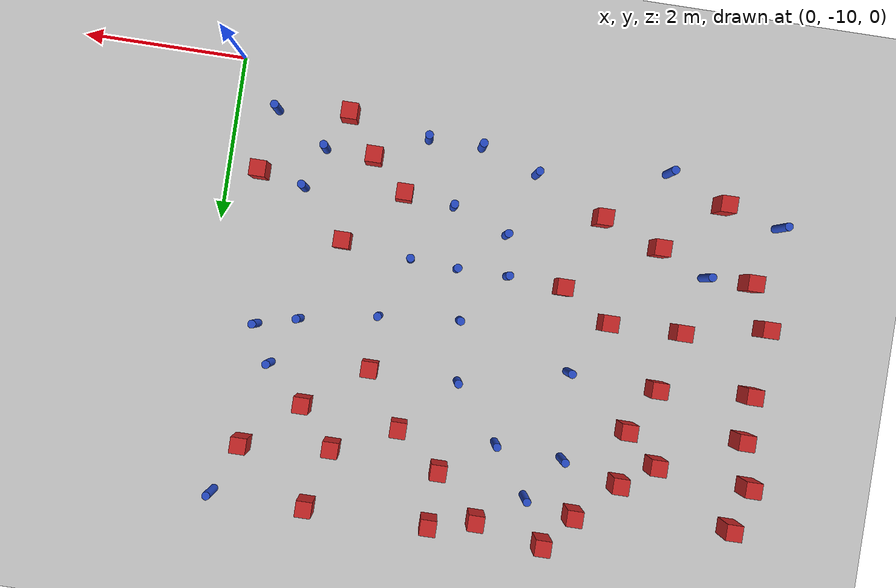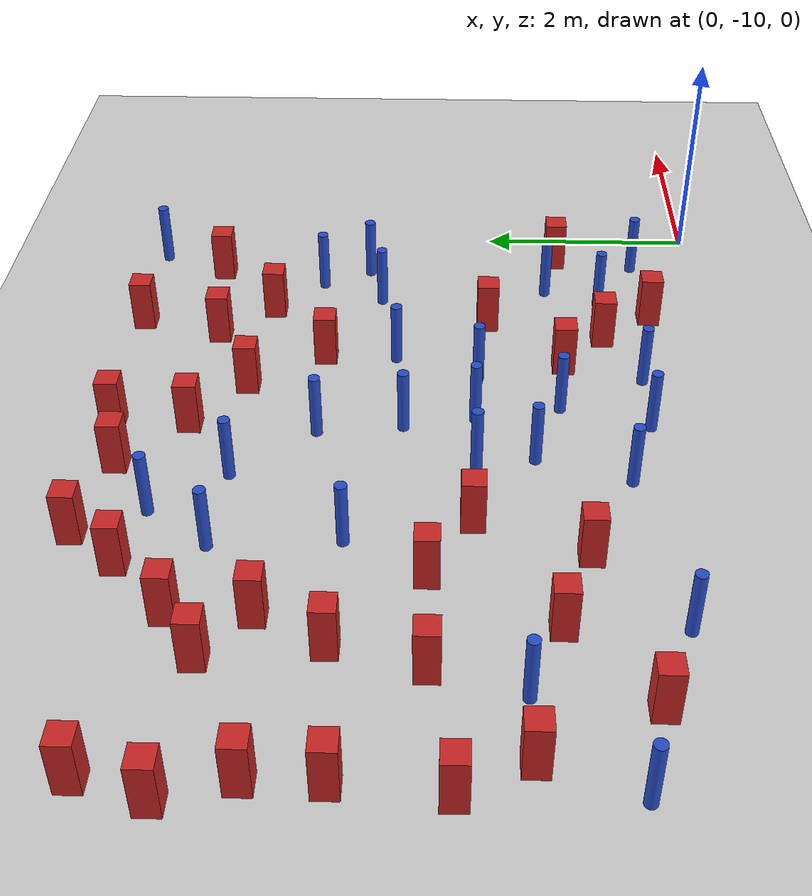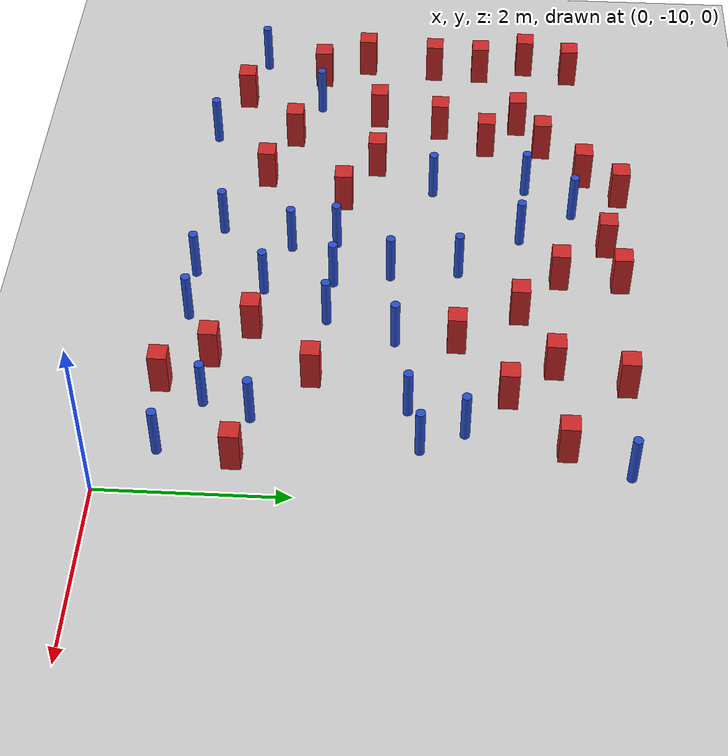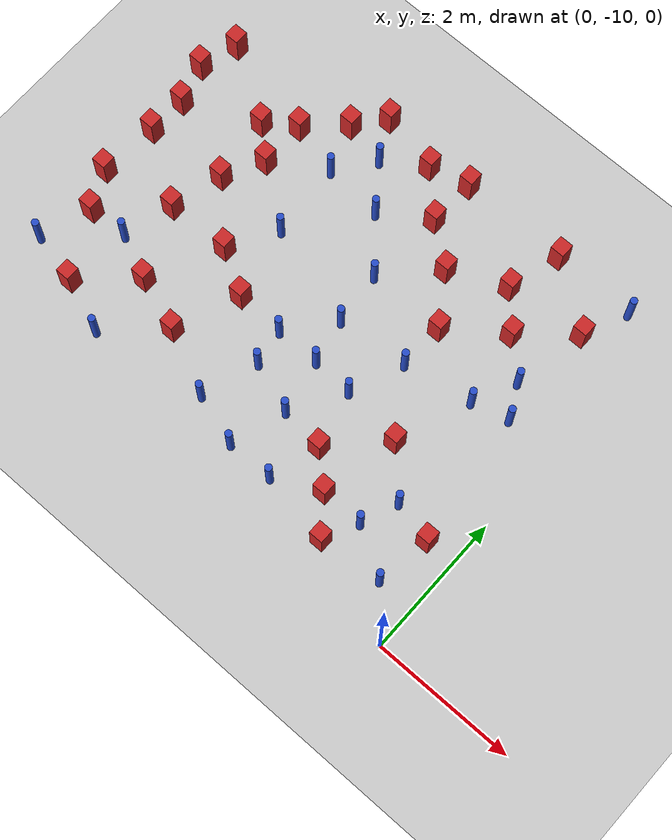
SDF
<sdf version="1.6">
 <world name="default">
  <model name="ground_plane">
   <static>1</static>
   <link name="link">
    <collision name="collision">
     <geometry><plane><normal>0 0 1</normal><size>100 100</size></plane></geometry>
     <surface><friction><ode><mu>100</mu><mu2>50</mu2></ode></friction></surface>
    </collision>
    <visual name="visual">
     <cast_shadows>0</cast_shadows>
     <geometry><plane><normal>0 0 1</normal><size>100 100</size></plane></geometry>
     <material>
      <ambient>1.0 1.0 1.0 1.0</ambient>
      <diffuse>0.8 0.8 0.8 1.0</diffuse>
      <specular>0.01 0.01 0.01 1.000000</specular>
     </material>
    </visual>
   </link>
  </model>
  <model name="square_post_obstacle12">
   <static>true</static>
   <pose>-4.83718442834 -5.03552390437 -6.11067671241e-07 -5.50515727128e-06 -8.79689657224e-07 2.37013304536e-05</pose>
   <link name="link">
    <pose>0 0 0.25 0 -0 0</pose>
    <inertial>
     <mass>100</mass>
     <inertia>
      <ixx>0.166667</ixx>
      <ixy>0</ixy>
      <ixz>0</ixz>
      <iyy>0.166667</iyy>
      <iyz>0</iyz>
      <izz>0.166667</izz>
     </inertia>
    </inertial>
    <collision name="collision"><geometry><box><size>.2 .2 .5</size></box></geometry></collision>
    <visual name="visual">
     <geometry><box><size>.2 .2 .5</size></box></geometry>
     <material>
      <script><name>Gazebo/Red</name><uri>file://media/materials/scripts/gazebo.material</uri></script>
     </material>
    </visual>
   </link>
  </model>
  <model name="square_post_obstacle26">
   <static>true</static>
   <pose>-1.5846080615 -4.65610966505 -6.11067671241e-07 -5.50515727128e-06 -8.79689657224e-07 2.37013304536e-05</pose>
   <link name="link">
    <pose>0 0 0.25 0 -0 0</pose>
    <inertial>
     <mass>100</mass>
     <inertia>
      <ixx>0.166667</ixx>
      <ixy>0</ixy>
      <ixz>0</ixz>
      <iyy>0.166667</iyy>
      <iyz>0</iyz>
      <izz>0.166667</izz>
     </inertia>
    </inertial>
    <collision name="collision"><geometry><box><size>.2 .2 .5</size></box></geometry></collision>
    <visual name="visual">
     <geometry><box><size>.2 .2 .5</size></box></geometry>
     <material>
      <script><name>Gazebo/Red</name><uri>file://media/materials/scripts/gazebo.material</uri></script>
     </material>
    </visual>
   </link>
  </model>
  <model name="pole_obstacle18">
   <static>true</static>
   <pose>-2.40985215184 -9.33603273842 -9.4761961606e-06 5.49618799729e-07 2.36310414e-07 -1.55090534824e-07</pose>
   <link name="link">
    <pose>0 0 0.3 0 -0 0</pose>
    <inertial>
     <mass>1</mass>
     <inertia><ixx>0.145833</ixx><ixy>0</ixy><ixz>0</ixz><iyy>0.145833</iyy><iyz>0</iyz><izz>0.125</izz></inertia>
    </inertial>
    <collision name="collision">
     <geometry><cylinder><radius>0.05</radius><length>.6</length></cylinder></geometry>
    </collision>
    <visual name="visual">
     <geometry><cylinder><radius>0.05</radius><length>.6</length></cylinder></geometry>
     <material>
      <script><name>Gazebo/Blue</name><uri>file://media/materials/scripts/gazebo.material</uri></script>
     </material>
    </visual>
   </link>
  </model>
  <model name="square_post_obstacle30">
   <static>true</static>
   <pose>-4.30563600093 -7.77978778191 -6.11067671241e-07 -5.50515727128e-06 -8.79689657224e-07 2.37013304536e-05</pose>
   <link name="link">
    <pose>0 0 0.25 0 -0 0</pose>
    <inertial>
     <mass>100</mass>
     <inertia>
      <ixx>0.166667</ixx>
      <ixy>0</ixy>
      <ixz>0</ixz>
      <iyy>0.166667</iyy>
      <iyz>0</iyz>
      <izz>0.166667</izz>
     </inertia>
    </inertial>
    <collision name="collision"><geometry><box><size>.2 .2 .5</size></box></geometry></collision>
    <visual name="visual">
     <geometry><box><size>.2 .2 .5</size></box></geometry>
     <material>
      <script><name>Gazebo/Red</name><uri>file://media/materials/scripts/gazebo.material</uri></script>
     </material>
    </visual>
   </link>
  </model>
  <model name="square_post_obstacle35">
   <static>true</static>
   <pose>-2.21484641199 -8.62770187818 -6.11067671241e-07 -5.50515727128e-06 -8.79689657224e-07 2.37013304536e-05</pose>
   <link name="link">
    <pose>0 0 0.25 0 -0 0</pose>
    <inertial>
     <mass>100</mass>
     <inertia>
      <ixx>0.166667</ixx>
      <ixy>0</ixy>
      <ixz>0</ixz>
      <iyy>0.166667</iyy>
      <iyz>0</iyz>
      <izz>0.166667</izz>
     </inertia>
    </inertial>
    <collision name="collision"><geometry><box><size>.2 .2 .5</size></box></geometry></collision>
    <visual name="visual">
     <geometry><box><size>.2 .2 .5</size></box></geometry>
     <material>
      <script><name>Gazebo/Red</name><uri>file://media/materials/scripts/gazebo.material</uri></script>
     </material>
    </visual>
   </link>
  </model>
  <model name="pole_obstacle38">
   <static>true</static>
   <pose>-1.16325461494 -6.91767273952 -9.47619616065e-06 5.49618799737e-07 2.36310414061e-07 -1.550905348e-07</pose>
   <link name="link">
    <pose>0 0 0.3 0 -0 0</pose>
    <inertial>
     <mass>1</mass>
     <inertia><ixx>0.145833</ixx><ixy>0</ixy><ixz>0</ixz><iyy>0.145833</iyy><iyz>0</iyz><izz>0.125</izz></inertia>
    </inertial>
    <collision name="collision">
     <geometry><cylinder><radius>0.05</radius><length>.6</length></cylinder></geometry>
    </collision>
    <visual name="visual">
     <geometry><cylinder><radius>0.05</radius><length>.6</length></cylinder></geometry>
     <material>
      <script><name>Gazebo/Blue</name><uri>file://media/materials/scripts/gazebo.material</uri></script>
     </material>
    </visual>
   </link>
  </model>
  <model name="square_post_obstacle39">
   <static>true</static>
   <pose>-3.10329741094 -4.66121660933 -6.11067671241e-07 -5.50515727128e-06 -8.79689657224e-07 2.37013304536e-05</pose>
   <link name="link">
    <pose>0 0 0.25 0 -0 0</pose>
    <inertial>
     <mass>100</mass>
     <inertia>
      <ixx>0.166667</ixx>
      <ixy>0</ixy>
      <ixz>0</ixz>
      <iyy>0.166667</iyy>
      <iyz>0</iyz>
      <izz>0.166667</izz>
     </inertia>
    </inertial>
    <collision name="collision"><geometry><box><size>.2 .2 .5</size></box></geometry></collision>
    <visual name="visual">
     <geometry><box><size>.2 .2 .5</size></box></geometry>
     <material>
      <script><name>Gazebo/Red</name><uri>file://media/materials/scripts/gazebo.material</uri></script>
     </material>
    </visual>
   </link>
  </model>
  <model name="square_post_obstacle41">
   <static>true</static>
   <pose>-6.75384427077 -6.25018877827 -6.11067671241e-07 -5.50515727128e-06 -8.79689657224e-07 2.37013304536e-05</pose>
   <link name="link">
    <pose>0 0 0.25 0 -0 0</pose>
    <inertial>
     <mass>100</mass>
     <inertia>
      <ixx>0.166667</ixx>
      <ixy>0</ixy>
      <ixz>0</ixz>
      <iyy>0.166667</iyy>
      <iyz>0</iyz>
      <izz>0.166667</izz>
     </inertia>
    </inertial>
    <collision name="collision"><geometry><box><size>.2 .2 .5</size></box></geometry></collision>
    <visual name="visual">
     <geometry><box><size>.2 .2 .5</size></box></geometry>
     <material>
      <script><name>Gazebo/Red</name><uri>file://media/materials/scripts/gazebo.material</uri></script>
     </material>
    </visual>
   </link>
  </model>
  <model name="square_post_obstacle42">
   <static>true</static>
   <pose>-1.36483648472 -5.88899371366 -6.11067671241e-07 -5.50515727128e-06 -8.79689657224e-07 2.37013304536e-05</pose>
   <link name="link">
    <pose>0 0 0.25 0 -0 0</pose>
    <inertial>
     <mass>100</mass>
     <inertia>
      <ixx>0.166667</ixx>
      <ixy>0</ixy>
      <ixz>0</ixz>
      <iyy>0.166667</iyy>
      <iyz>0</iyz>
      <izz>0.166667</izz>
     </inertia>
    </inertial>
    <collision name="collision"><geometry><box><size>.2 .2 .5</size></box></geometry></collision>
    <visual name="visual">
     <geometry><box><size>.2 .2 .5</size></box></geometry>
     <material>
      <script><name>Gazebo/Red</name><uri>file://media/materials/scripts/gazebo.material</uri></script>
     </material>
    </visual>
   </link>
  </model>
  <model name="square_post_obstacle45">
   <static>true</static>
   <pose>-5.81466519297 -7.44528038103 -6.11067671241e-07 -5.50515727128e-06 -8.79689657224e-07 2.37013304536e-05</pose>
   <link name="link">
    <pose>0 0 0.25 0 -0 0</pose>
    <inertial>
     <mass>100</mass>
     <inertia>
      <ixx>0.166667</ixx>
      <ixy>0</ixy>
      <ixz>0</ixz>
      <iyy>0.166667</iyy>
      <iyz>0</iyz>
      <izz>0.166667</izz>
     </inertia>
    </inertial>
    <collision name="collision"><geometry><box><size>.2 .2 .5</size></box></geometry></collision>
    <visual name="visual">
     <geometry><box><size>.2 .2 .5</size></box></geometry>
     <material>
      <script><name>Gazebo/Red</name><uri>file://media/materials/scripts/gazebo.material</uri></script>
     </material>
    </visual>
   </link>
  </model>
  <model name="square_post_obstacle46">
   <static>true</static>
   <pose>-5.39934967736 -8.42780844273 -6.11067671241e-07 -5.50515727128e-06 -8.79689657224e-07 2.37013304536e-05</pose>
   <link name="link">
    <pose>0 0 0.25 0 -0 0</pose>
    <inertial>
     <mass>100</mass>
     <inertia>
      <ixx>0.166667</ixx>
      <ixy>0</ixy>
      <ixz>0</ixz>
      <iyy>0.166667</iyy>
      <iyz>0</iyz>
      <izz>0.166667</izz>
     </inertia>
    </inertial>
    <collision name="collision"><geometry><box><size>.2 .2 .5</size></box></geometry></collision>
    <visual name="visual">
     <geometry><box><size>.2 .2 .5</size></box></geometry>
     <material>
      <script><name>Gazebo/Red</name><uri>file://media/materials/scripts/gazebo.material</uri></script>
     </material>
    </visual>
   </link>
  </model>
  <model name="pole_obstacle50">
   <static>true</static>
   <pose>-2.40730170396 -7.84366065075 -9.47619616065e-06 5.49618799738e-07 2.3631041406e-07 -1.55090534801e-07</pose>
   <link name="link">
    <pose>0 0 0.3 0 -0 0</pose>
    <inertial>
     <mass>1</mass>
     <inertia><ixx>0.145833</ixx><ixy>0</ixy><ixz>0</ixz><iyy>0.145833</iyy><iyz>0</iyz><izz>0.125</izz></inertia>
    </inertial>
    <collision name="collision">
     <geometry><cylinder><radius>0.05</radius><length>.6</length></cylinder></geometry>
    </collision>
    <visual name="visual">
     <geometry><cylinder><radius>0.05</radius><length>.6</length></cylinder></geometry>
     <material>
      <script><name>Gazebo/Blue</name><uri>file://media/materials/scripts/gazebo.material</uri></script>
     </material>
    </visual>
   </link>
  </model>
  <model name="square_post_obstacle49">
   <static>true</static>
   <pose>-6.76174020716 -5.15789990695 -6.11067671241e-07 -5.50515727128e-06 -8.79689657224e-07 2.37013304536e-05</pose>
   <link name="link">
    <pose>0 0 0.25 0 -0 0</pose>
    <inertial>
     <mass>100</mass>
     <inertia>
      <ixx>0.166667</ixx>
      <ixy>0</ixy>
      <ixz>0</ixz>
      <iyy>0.166667</iyy>
      <iyz>0</iyz>
      <izz>0.166667</izz>
     </inertia>
    </inertial>
    <collision name="collision"><geometry><box><size>.2 .2 .5</size></box></geometry></collision>
    <visual name="visual">
     <geometry><box><size>.2 .2 .5</size></box></geometry>
     <material>
      <script><name>Gazebo/Red</name><uri>file://media/materials/scripts/gazebo.material</uri></script>
     </material>
    </visual>
   </link>
  </model>
  <model name="square_post_obstacle57">
   <static>true</static>
   <pose>-2.56894127367 -5.77125538065 -6.11067671241e-07 -5.50515727128e-06 -8.79689657224e-07 2.37013304536e-05</pose>
   <link name="link">
    <pose>0 0 0.25 0 -0 0</pose>
    <inertial>
     <mass>100</mass>
     <inertia>
      <ixx>0.166667</ixx>
      <ixy>0</ixy>
      <ixz>0</ixz>
      <iyy>0.166667</iyy>
      <iyz>0</iyz>
      <izz>0.166667</izz>
     </inertia>
    </inertial>
    <collision name="collision"><geometry><box><size>.2 .2 .5</size></box></geometry></collision>
    <visual name="visual">
     <geometry><box><size>.2 .2 .5</size></box></geometry>
     <material>
      <script><name>Gazebo/Red</name><uri>file://media/materials/scripts/gazebo.material</uri></script>
     </material>
    </visual>
   </link>
  </model>
  <model name="pole_obstacle62">
   <static>true</static>
   <pose>-1.17514716195 -9.03151661753 -9.47619616065e-06 5.49618799737e-07 2.36310414046e-07 -1.55090534809e-07</pose>
   <link name="link">
    <pose>0 0 0.3 0 -0 0</pose>
    <inertial>
     <mass>1</mass>
     <inertia><ixx>0.145833</ixx><ixy>0</ixy><ixz>0</ixz><iyy>0.145833</iyy><iyz>0</iyz><izz>0.125</izz></inertia>
    </inertial>
    <collision name="collision">
     <geometry><cylinder><radius>0.05</radius><length>.6</length></cylinder></geometry>
    </collision>
    <visual name="visual">
     <geometry><cylinder><radius>0.05</radius><length>.6</length></cylinder></geometry>
     <material>
      <script><name>Gazebo/Blue</name><uri>file://media/materials/scripts/gazebo.material</uri></script>
     </material>
    </visual>
   </link>
  </model>
  <model name="square_post_obstacle67">
   <static>true</static>
   <pose>-1.55098153724 -7.94087589289 -6.11067671241e-07 -5.50515727128e-06 -8.79689657224e-07 2.37013304536e-05</pose>
   <link name="link">
    <pose>0 0 0.25 0 -0 0</pose>
    <inertial>
     <mass>100</mass>
     <inertia>
      <ixx>0.166667</ixx>
      <ixy>0</ixy>
      <ixz>0</ixz>
      <iyy>0.166667</iyy>
      <iyz>0</iyz>
      <izz>0.166667</izz>
     </inertia>
    </inertial>
    <collision name="collision"><geometry><box><size>.2 .2 .5</size></box></geometry></collision>
    <visual name="visual">
     <geometry><box><size>.2 .2 .5</size></box></geometry>
     <material>
      <script><name>Gazebo/Red</name><uri>file://media/materials/scripts/gazebo.material</uri></script>
     </material>
    </visual>
   </link>
  </model>
  <model name="pole_obstacle65">
   <static>true</static>
   <pose>-4.22393779312 -5.16657298797 -9.47619616065e-06 5.49618799737e-07 2.36310414037e-07 -1.55090534814e-07</pose>
   <link name="link">
    <pose>0 0 0.3 0 -0 0</pose>
    <inertial>
     <mass>1</mass>
     <inertia><ixx>0.145833</ixx><ixy>0</ixy><ixz>0</ixz><iyy>0.145833</iyy><iyz>0</iyz><izz>0.125</izz></inertia>
    </inertial>
    <collision name="collision">
     <geometry><cylinder><radius>0.05</radius><length>.6</length></cylinder></geometry>
    </collision>
    <visual name="visual">
     <geometry><cylinder><radius>0.05</radius><length>.6</length></cylinder></geometry>
     <material>
      <script><name>Gazebo/Blue</name><uri>file://media/materials/scripts/gazebo.material</uri></script>
     </material>
    </visual>
   </link>
  </model>
  <model name="square_post_obstacle68">
   <static>true</static>
   <pose>-4.6569359601 -8.69216541888 -6.11067671241e-07 -5.50515727128e-06 -8.79689657224e-07 2.37013304536e-05</pose>
   <link name="link">
    <pose>0 0 0.25 0 -0 0</pose>
    <inertial>
     <mass>100</mass>
     <inertia>
      <ixx>0.166667</ixx>
      <ixy>0</ixy>
      <ixz>0</ixz>
      <iyy>0.166667</iyy>
      <iyz>0</iyz>
      <izz>0.166667</izz>
     </inertia>
    </inertial>
    <collision name="collision"><geometry><box><size>.2 .2 .5</size></box></geometry></collision>
    <visual name="visual">
     <geometry><box><size>.2 .2 .5</size></box></geometry>
     <material>
      <script><name>Gazebo/Red</name><uri>file://media/materials/scripts/gazebo.material</uri></script>
     </material>
    </visual>
   </link>
  </model>
  <model name="pole_obstacle68">
   <static>true</static>
   <pose>-3.78103634421 -9.10641417287 -9.47619616065e-06 5.49618799738e-07 2.36310414059e-07 -1.55090534802e-07</pose>
   <link name="link">
    <pose>0 0 0.3 0 -0 0</pose>
    <inertial>
     <mass>1</mass>
     <inertia><ixx>0.145833</ixx><ixy>0</ixy><ixz>0</ixz><iyy>0.145833</iyy><iyz>0</iyz><izz>0.125</izz></inertia>
    </inertial>
    <collision name="collision">
     <geometry><cylinder><radius>0.05</radius><length>.6</length></cylinder></geometry>
    </collision>
    <visual name="visual">
     <geometry><cylinder><radius>0.05</radius><length>.6</length></cylinder></geometry>
     <material>
      <script><name>Gazebo/Blue</name><uri>file://media/materials/scripts/gazebo.material</uri></script>
     </material>
    </visual>
   </link>
  </model>
  <model name="pole_obstacle71">
   <static>true</static>
   <pose>-3.115735888 -7.18829062991 -9.47619616065e-06 5.49618799738e-07 2.3631041406e-07 -1.55090534801e-07</pose>
   <link name="link">
    <pose>0 0 0.3 0 -0 0</pose>
    <inertial>
     <mass>1</mass>
     <inertia><ixx>0.145833</ixx><ixy>0</ixy><ixz>0</ixz><iyy>0.145833</iyy><iyz>0</iyz><izz>0.125</izz></inertia>
    </inertial>
    <collision name="collision">
     <geometry><cylinder><radius>0.05</radius><length>.6</length></cylinder></geometry>
    </collision>
    <visual name="visual">
     <geometry><cylinder><radius>0.05</radius><length>.6</length></cylinder></geometry>
     <material>
      <script><name>Gazebo/Blue</name><uri>file://media/materials/scripts/gazebo.material</uri></script>
     </material>
    </visual>
   </link>
  </model>
  <model name="pole_obstacle72">
   <static>true</static>
   <pose>-0.983941497895 -8.52154136609 -9.47619616065e-06 5.49618799737e-07 2.36310414038e-07 -1.55090534814e-07</pose>
   <link name="link">
    <pose>0 0 0.3 0 -0 0</pose>
    <inertial>
     <mass>1</mass>
     <inertia><ixx>0.145833</ixx><ixy>0</ixy><ixz>0</ixz><iyy>0.145833</iyy><iyz>0</iyz><izz>0.125</izz></inertia>
    </inertial>
    <collision name="collision">
     <geometry><cylinder><radius>0.05</radius><length>.6</length></cylinder></geometry>
    </collision>
    <visual name="visual">
     <geometry><cylinder><radius>0.05</radius><length>.6</length></cylinder></geometry>
     <material>
      <script><name>Gazebo/Blue</name><uri>file://media/materials/scripts/gazebo.material</uri></script>
     </material>
    </visual>
   </link>
  </model>
  <model name="pole_obstacle76">
   <static>true</static>
   <pose>-4.60678717807 -5.69894067374 -9.47619616065e-06 5.49618799737e-07 2.36310414037e-07 -1.55090534814e-07</pose>
   <link name="link">
    <pose>0 0 0.3 0 -0 0</pose>
    <inertial>
     <mass>1</mass>
     <inertia><ixx>0.145833</ixx><ixy>0</ixy><ixz>0</ixz><iyy>0.145833</iyy><iyz>0</iyz><izz>0.125</izz></inertia>
    </inertial>
    <collision name="collision">
     <geometry><cylinder><radius>0.05</radius><length>.6</length></cylinder></geometry>
    </collision>
    <visual name="visual">
     <geometry><cylinder><radius>0.05</radius><length>.6</length></cylinder></geometry>
     <material>
      <script><name>Gazebo/Blue</name><uri>file://media/materials/scripts/gazebo.material</uri></script>
     </material>
    </visual>
   </link>
  </model>
  <model name="pole_obstacle77">
   <static>true</static>
   <pose>-3.5255386827 -8.31318433163 -9.4761961606e-06 5.49618799729e-07 2.36310414e-07 -1.55090534824e-07</pose>
   <link name="link">
    <pose>0 0 0.3 0 -0 0</pose>
    <inertial>
     <mass>1</mass>
     <inertia><ixx>0.145833</ixx><ixy>0</ixy><ixz>0</ixz><iyy>0.145833</iyy><iyz>0</iyz><izz>0.125</izz></inertia>
    </inertial>
    <collision name="collision">
     <geometry><cylinder><radius>0.05</radius><length>.6</length></cylinder></geometry>
    </collision>
    <visual name="visual">
     <geometry><cylinder><radius>0.05</radius><length>.6</length></cylinder></geometry>
     <material>
      <script><name>Gazebo/Blue</name><uri>file://media/materials/scripts/gazebo.material</uri></script>
     </material>
    </visual>
   </link>
  </model>
  <model name="square_post_obstacle77">
   <static>true</static>
   <pose>-3.12828887506 -5.33292674499 -6.11067671241e-07 -5.50515727128e-06 -8.79689657224e-07 2.37013304536e-05</pose>
   <link name="link">
    <pose>0 0 0.25 0 -0 0</pose>
    <inertial>
     <mass>100</mass>
     <inertia>
      <ixx>0.166667</ixx>
      <ixy>0</ixy>
      <ixz>0</ixz>
      <iyy>0.166667</iyy>
      <iyz>0</iyz>
      <izz>0.166667</izz>
     </inertia>
    </inertial>
    <collision name="collision"><geometry><box><size>.2 .2 .5</size></box></geometry></collision>
    <visual name="visual">
     <geometry><box><size>.2 .2 .5</size></box></geometry>
     <material>
      <script><name>Gazebo/Red</name><uri>file://media/materials/scripts/gazebo.material</uri></script>
     </material>
    </visual>
   </link>
  </model>
  <model name="pole_obstacle81">
   <static>true</static>
   <pose>-5.38350220126 -9.36172045176 -9.47619616065e-06 5.49618799737e-07 2.36310414065e-07 -1.55090534796e-07</pose>
   <link name="link">
    <pose>0 0 0.3 0 -0 0</pose>
    <inertial>
     <mass>1</mass>
     <inertia><ixx>0.145833</ixx><ixy>0</ixy><ixz>0</ixz><iyy>0.145833</iyy><iyz>0</iyz><izz>0.125</izz></inertia>
    </inertial>
    <collision name="collision">
     <geometry><cylinder><radius>0.05</radius><length>.6</length></cylinder></geometry>
    </collision>
    <visual name="visual">
     <geometry><cylinder><radius>0.05</radius><length>.6</length></cylinder></geometry>
     <material>
      <script><name>Gazebo/Blue</name><uri>file://media/materials/scripts/gazebo.material</uri></script>
     </material>
    </visual>
   </link>
  </model>
  <model name="square_post_obstacle87">
   <static>true</static>
   <pose>-5.33389345543 -6.16191208388 -6.11067671241e-07 -5.50515727128e-06 -8.79689657224e-07 2.37013304536e-05</pose>
   <link name="link">
    <pose>0 0 0.25 0 -0 0</pose>
    <inertial>
     <mass>100</mass>
     <inertia>
      <ixx>0.166667</ixx>
      <ixy>0</ixy>
      <ixz>0</ixz>
      <iyy>0.166667</iyy>
      <iyz>0</iyz>
      <izz>0.166667</izz>
     </inertia>
    </inertial>
    <collision name="collision"><geometry><box><size>.2 .2 .5</size></box></geometry></collision>
    <visual name="visual">
     <geometry><box><size>.2 .2 .5</size></box></geometry>
     <material>
      <script><name>Gazebo/Red</name><uri>file://media/materials/scripts/gazebo.material</uri></script>
     </material>
    </visual>
   </link>
  </model>
  <model name="pole_obstacle97">
   <static>true</static>
   <pose>-2.12272352979 -7.09306886857 -9.47619616065e-06 5.49618799738e-07 2.3631041406e-07 -1.55090534801e-07</pose>
   <link name="link">
    <pose>0 0 0.3 0 -0 0</pose>
    <inertial>
     <mass>1</mass>
     <inertia><ixx>0.145833</ixx><ixy>0</ixy><ixz>0</ixz><iyy>0.145833</iyy><iyz>0</iyz><izz>0.125</izz></inertia>
    </inertial>
    <collision name="collision">
     <geometry><cylinder><radius>0.05</radius><length>.6</length></cylinder></geometry>
    </collision>
    <visual name="visual">
     <geometry><cylinder><radius>0.05</radius><length>.6</length></cylinder></geometry>
     <material>
      <script><name>Gazebo/Blue</name><uri>file://media/materials/scripts/gazebo.material</uri></script>
     </material>
    </visual>
   </link>
  </model>
  <model name="pole_obstacle105">
   <static>true</static>
   <pose>-3.07050059901 -9.33777043437 -9.4761961606e-06 5.49618799729e-07 2.36310414e-07 -1.55090534824e-07</pose>
   <link name="link">
    <pose>0 0 0.3 0 -0 0</pose>
    <inertial>
     <mass>1</mass>
     <inertia><ixx>0.145833</ixx><ixy>0</ixy><ixz>0</ixz><iyy>0.145833</iyy><iyz>0</iyz><izz>0.125</izz></inertia>
    </inertial>
    <collision name="collision">
     <geometry><cylinder><radius>0.05</radius><length>.6</length></cylinder></geometry>
    </collision>
    <visual name="visual">
     <geometry><cylinder><radius>0.05</radius><length>.6</length></cylinder></geometry>
     <material>
      <script><name>Gazebo/Blue</name><uri>file://media/materials/scripts/gazebo.material</uri></script>
     </material>
    </visual>
   </link>
  </model>
  <model name="square_post_obstacle94">
   <static>true</static>
   <pose>-5.33003239853 -5.50318650776 -6.11067671241e-07 -5.50515727128e-06 -8.79689657224e-07 2.37013304536e-05</pose>
   <link name="link">
    <pose>0 0 0.25 0 -0 0</pose>
    <inertial>
     <mass>100</mass>
     <inertia>
      <ixx>0.166667</ixx>
      <ixy>0</ixy>
      <ixz>0</ixz>
      <iyy>0.166667</iyy>
      <iyz>0</iyz>
      <izz>0.166667</izz>
     </inertia>
    </inertial>
    <collision name="collision"><geometry><box><size>.2 .2 .5</size></box></geometry></collision>
    <visual name="visual">
     <geometry><box><size>.2 .2 .5</size></box></geometry>
     <material>
      <script><name>Gazebo/Red</name><uri>file://media/materials/scripts/gazebo.material</uri></script>
     </material>
    </visual>
   </link>
  </model>
  <model name="square_post_obstacle101">
   <static>true</static>
   <pose>-5.62275897522 -6.71462622603 -6.11067671241e-07 -5.50515727128e-06 -8.79689657224e-07 2.37013304536e-05</pose>
   <link name="link">
    <pose>0 0 0.25 0 -0 0</pose>
    <inertial>
     <mass>100</mass>
     <inertia>
      <ixx>0.166667</ixx>
      <ixy>0</ixy>
      <ixz>0</ixz>
      <iyy>0.166667</iyy>
      <iyz>0</iyz>
      <izz>0.166667</izz>
     </inertia>
    </inertial>
    <collision name="collision"><geometry><box><size>.2 .2 .5</size></box></geometry></collision>
    <visual name="visual">
     <geometry><box><size>.2 .2 .5</size></box></geometry>
     <material>
      <script><name>Gazebo/Red</name><uri>file://media/materials/scripts/gazebo.material</uri></script>
     </material>
    </visual>
   </link>
  </model>
  <model name="pole_obstacle119">
   <static>true</static>
   <pose>-0.417210719167 -4.66447657872 -9.47619616065e-06 5.49618799737e-07 2.36310414065e-07 -1.55090534796e-07</pose>
   <link name="link">
    <pose>0 0 0.3 0 -0 0</pose>
    <inertial>
     <mass>1</mass>
     <inertia><ixx>0.145833</ixx><ixy>0</ixy><ixz>0</ixz><iyy>0.145833</iyy><iyz>0</iyz><izz>0.125</izz></inertia>
    </inertial>
    <collision name="collision">
     <geometry><cylinder><radius>0.05</radius><length>.6</length></cylinder></geometry>
    </collision>
    <visual name="visual">
     <geometry><cylinder><radius>0.05</radius><length>.6</length></cylinder></geometry>
     <material>
      <script><name>Gazebo/Blue</name><uri>file://media/materials/scripts/gazebo.material</uri></script>
     </material>
    </visual>
   </link>
  </model>
  <model name="pole_obstacle126">
   <static>true</static>
   <pose>-0.521110383519 -9.41913757347 -9.47619616065e-06 5.49618799737e-07 2.36310414028e-07 -1.55090534819e-07</pose>
   <link name="link">
    <pose>0 0 0.3 0 -0 0</pose>
    <inertial>
     <mass>1</mass>
     <inertia><ixx>0.145833</ixx><ixy>0</ixy><ixz>0</ixz><iyy>0.145833</iyy><iyz>0</iyz><izz>0.125</izz></inertia>
    </inertial>
    <collision name="collision">
     <geometry><cylinder><radius>0.05</radius><length>.6</length></cylinder></geometry>
    </collision>
    <visual name="visual">
     <geometry><cylinder><radius>0.05</radius><length>.6</length></cylinder></geometry>
     <material>
      <script><name>Gazebo/Blue</name><uri>file://media/materials/scripts/gazebo.material</uri></script>
     </material>
    </visual>
   </link>
  </model>
  <model name="pole_obstacle129">
   <static>true</static>
   <pose>-3.20199169894 -6.44157220688 -9.47619616065e-06 5.49618799738e-07 2.3631041406e-07 -1.55090534801e-07</pose>
   <link name="link">
    <pose>0 0 0.3 0 -0 0</pose>
    <inertial>
     <mass>1</mass>
     <inertia><ixx>0.145833</ixx><ixy>0</ixy><ixz>0</ixz><iyy>0.145833</iyy><iyz>0</iyz><izz>0.125</izz></inertia>
    </inertial>
    <collision name="collision">
     <geometry><cylinder><radius>0.05</radius><length>.6</length></cylinder></geometry>
    </collision>
    <visual name="visual">
     <geometry><cylinder><radius>0.05</radius><length>.6</length></cylinder></geometry>
     <material>
      <script><name>Gazebo/Blue</name><uri>file://media/materials/scripts/gazebo.material</uri></script>
     </material>
    </visual>
   </link>
  </model>
  <model name="pole_obstacle130">
   <static>true</static>
   <pose>-4.52960066977 -6.7620172495 -9.47619616065e-06 5.49618799737e-07 2.36310414037e-07 -1.55090534814e-07</pose>
   <link name="link">
    <pose>0 0 0.3 0 -0 0</pose>
    <inertial>
     <mass>1</mass>
     <inertia><ixx>0.145833</ixx><ixy>0</ixy><ixz>0</ixz><iyy>0.145833</iyy><iyz>0</iyz><izz>0.125</izz></inertia>
    </inertial>
    <collision name="collision">
     <geometry><cylinder><radius>0.05</radius><length>.6</length></cylinder></geometry>
    </collision>
    <visual name="visual">
     <geometry><cylinder><radius>0.05</radius><length>.6</length></cylinder></geometry>
     <material>
      <script><name>Gazebo/Blue</name><uri>file://media/materials/scripts/gazebo.material</uri></script>
     </material>
    </visual>
   </link>
  </model>
  <model name="pole_obstacle137">
   <static>true</static>
   <pose>-6.01286912979 -8.15784162708 -9.47619616065e-06 5.49618799737e-07 2.36310414065e-07 -1.55090534796e-07</pose>
   <link name="link">
    <pose>0 0 0.3 0 -0 0</pose>
    <inertial>
     <mass>1</mass>
     <inertia><ixx>0.145833</ixx><ixy>0</ixy><ixz>0</ixz><iyy>0.145833</iyy><iyz>0</iyz><izz>0.125</izz></inertia>
    </inertial>
    <collision name="collision">
     <geometry><cylinder><radius>0.05</radius><length>.6</length></cylinder></geometry>
    </collision>
    <visual name="visual">
     <geometry><cylinder><radius>0.05</radius><length>.6</length></cylinder></geometry>
     <material>
      <script><name>Gazebo/Blue</name><uri>file://media/materials/scripts/gazebo.material</uri></script>
     </material>
    </visual>
   </link>
  </model>
  <model name="pole_obstacle138">
   <static>true</static>
   <pose>-6.82486469417 -8.89566421901 -9.47619616065e-06 5.49618799737e-07 2.36310414065e-07 -1.55090534796e-07</pose>
   <link name="link">
    <pose>0 0 0.3 0 -0 0</pose>
    <inertial>
     <mass>1</mass>
     <inertia><ixx>0.145833</ixx><ixy>0</ixy><ixz>0</ixz><iyy>0.145833</iyy><iyz>0</iyz><izz>0.125</izz></inertia>
    </inertial>
    <collision name="collision">
     <geometry><cylinder><radius>0.05</radius><length>.6</length></cylinder></geometry>
    </collision>
    <visual name="visual">
     <geometry><cylinder><radius>0.05</radius><length>.6</length></cylinder></geometry>
     <material>
      <script><name>Gazebo/Blue</name><uri>file://media/materials/scripts/gazebo.material</uri></script>
     </material>
    </visual>
   </link>
  </model>
  <model name="square_post_obstacle136">
   <static>true</static>
   <pose>-4.9115086818 -7.42745471552 -6.11067671241e-07 -5.50515727128e-06 -8.79689657224e-07 2.37013304536e-05</pose>
   <link name="link">
    <pose>0 0 0.25 0 -0 0</pose>
    <inertial>
     <mass>100</mass>
     <inertia>
      <ixx>0.166667</ixx>
      <ixy>0</ixy>
      <ixz>0</ixz>
      <iyy>0.166667</iyy>
      <iyz>0</iyz>
      <izz>0.166667</izz>
     </inertia>
    </inertial>
    <collision name="collision"><geometry><box><size>.2 .2 .5</size></box></geometry></collision>
    <visual name="visual">
     <geometry><box><size>.2 .2 .5</size></box></geometry>
     <material>
      <script><name>Gazebo/Red</name><uri>file://media/materials/scripts/gazebo.material</uri></script>
     </material>
    </visual>
   </link>
  </model>
  <model name="square_post_obstacle139">
   <static>true</static>
   <pose>-6.83646586827 -7.63972051054 -6.11067671241e-07 -5.50515727128e-06 -8.79689657224e-07 2.37013304536e-05</pose>
   <link name="link">
    <pose>0 0 0.25 0 -0 0</pose>
    <inertial>
     <mass>100</mass>
     <inertia>
      <ixx>0.166667</ixx>
      <ixy>0</ixy>
      <ixz>0</ixz>
      <iyy>0.166667</iyy>
      <iyz>0</iyz>
      <izz>0.166667</izz>
     </inertia>
    </inertial>
    <collision name="collision"><geometry><box><size>.2 .2 .5</size></box></geometry></collision>
    <visual name="visual">
     <geometry><box><size>.2 .2 .5</size></box></geometry>
     <material>
      <script><name>Gazebo/Red</name><uri>file://media/materials/scripts/gazebo.material</uri></script>
     </material>
    </visual>
   </link>
  </model>
  <model name="square_post_obstacle141">
   <static>true</static>
   <pose>-6.57248889949 -8.17117825278 -6.11067671241e-07 -5.50515727128e-06 -8.79689657224e-07 2.37013304536e-05</pose>
   <link name="link">
    <pose>0 0 0.25 0 -0 0</pose>
    <inertial>
     <mass>100</mass>
     <inertia>
      <ixx>0.166667</ixx>
      <ixy>0</ixy>
      <ixz>0</ixz>
      <iyy>0.166667</iyy>
      <iyz>0</iyz>
      <izz>0.166667</izz>
     </inertia>
    </inertial>
    <collision name="collision"><geometry><box><size>.2 .2 .5</size></box></geometry></collision>
    <visual name="visual">
     <geometry><box><size>.2 .2 .5</size></box></geometry>
     <material>
      <script><name>Gazebo/Red</name><uri>file://media/materials/scripts/gazebo.material</uri></script>
     </material>
    </visual>
   </link>
  </model>
  <model name="pole_obstacle152">
   <static>true</static>
   <pose>-0.650590705445 -6.77768869467 -9.47619616065e-06 5.49618799737e-07 2.36310414065e-07 -1.55090534796e-07</pose>
   <link name="link">
    <pose>0 0 0.3 0 -0 0</pose>
    <inertial>
     <mass>1</mass>
     <inertia><ixx>0.145833</ixx><ixy>0</ixy><ixz>0</ixz><iyy>0.145833</iyy><iyz>0</iyz><izz>0.125</izz></inertia>
    </inertial>
    <collision name="collision">
     <geometry><cylinder><radius>0.05</radius><length>.6</length></cylinder></geometry>
    </collision>
    <visual name="visual">
     <geometry><cylinder><radius>0.05</radius><length>.6</length></cylinder></geometry>
     <material>
      <script><name>Gazebo/Blue</name><uri>file://media/materials/scripts/gazebo.material</uri></script>
     </material>
    </visual>
   </link>
  </model>
  <model name="square_post_obstacle142">
   <static>true</static>
   <pose>-2.1130431555 -6.43939039516 -6.11067671241e-07 -5.50515727128e-06 -8.79689657224e-07 2.37013304536e-05</pose>
   <link name="link">
    <pose>0 0 0.25 0 -0 0</pose>
    <inertial>
     <mass>100</mass>
     <inertia>
      <ixx>0.166667</ixx>
      <ixy>0</ixy>
      <ixz>0</ixz>
      <iyy>0.166667</iyy>
      <iyz>0</iyz>
      <izz>0.166667</izz>
     </inertia>
    </inertial>
    <collision name="collision"><geometry><box><size>.2 .2 .5</size></box></geometry></collision>
    <visual name="visual">
     <geometry><box><size>.2 .2 .5</size></box></geometry>
     <material>
      <script><name>Gazebo/Red</name><uri>file://media/materials/scripts/gazebo.material</uri></script>
     </material>
    </visual>
   </link>
  </model>
  <model name="square_post_obstacle146">
   <static>true</static>
   <pose>-6.10695518062 -9.06757628955 -6.11067671241e-07 -5.50515727128e-06 -8.79689657224e-07 2.37013304536e-05</pose>
   <link name="link">
    <pose>0 0 0.25 0 -0 0</pose>
    <inertial>
     <mass>100</mass>
     <inertia>
      <ixx>0.166667</ixx>
      <ixy>0</ixy>
      <ixz>0</ixz>
      <iyy>0.166667</iyy>
      <iyz>0</iyz>
      <izz>0.166667</izz>
     </inertia>
    </inertial>
    <collision name="collision"><geometry><box><size>.2 .2 .5</size></box></geometry></collision>
    <visual name="visual">
     <geometry><box><size>.2 .2 .5</size></box></geometry>
     <material>
      <script><name>Gazebo/Red</name><uri>file://media/materials/scripts/gazebo.material</uri></script>
     </material>
    </visual>
   </link>
  </model>
  <model name="pole_obstacle158">
   <static>true</static>
   <pose>-2.833620576 -8.5626191134 -9.4761961606e-06 5.49618799729e-07 2.36310414e-07 -1.55090534824e-07</pose>
   <link name="link">
    <pose>0 0 0.3 0 -0 0</pose>
    <inertial>
     <mass>1</mass>
     <inertia><ixx>0.145833</ixx><ixy>0</ixy><ixz>0</ixz><iyy>0.145833</iyy><iyz>0</iyz><izz>0.125</izz></inertia>
    </inertial>
    <collision name="collision">
     <geometry><cylinder><radius>0.05</radius><length>.6</length></cylinder></geometry>
    </collision>
    <visual name="visual">
     <geometry><cylinder><radius>0.05</radius><length>.6</length></cylinder></geometry>
     <material>
      <script><name>Gazebo/Blue</name><uri>file://media/materials/scripts/gazebo.material</uri></script>
     </material>
    </visual>
   </link>
  </model>
  <model name="square_post_obstacle157">
   <static>true</static>
   <pose>-0.689765589237 -5.29750381736 -6.11067671241e-07 -5.50515727128e-06 -8.79689657224e-07 2.37013304536e-05</pose>
   <link name="link">
    <pose>0 0 0.25 0 -0 0</pose>
    <inertial>
     <mass>100</mass>
     <inertia>
      <ixx>0.166667</ixx>
      <ixy>0</ixy>
      <ixz>0</ixz>
      <iyy>0.166667</iyy>
      <iyz>0</iyz>
      <izz>0.166667</izz>
     </inertia>
    </inertial>
    <collision name="collision"><geometry><box><size>.2 .2 .5</size></box></geometry></collision>
    <visual name="visual">
     <geometry><box><size>.2 .2 .5</size></box></geometry>
     <material>
      <script><name>Gazebo/Red</name><uri>file://media/materials/scripts/gazebo.material</uri></script>
     </material>
    </visual>
   </link>
  </model>
  <model name="pole_obstacle165">
   <static>true</static>
   <pose>-3.61320832194 -7.81427482477 -9.47619616065e-06 5.49618799738e-07 2.3631041406e-07 -1.55090534801e-07</pose>
   <link name="link">
    <pose>0 0 0.3 0 -0 0</pose>
    <inertial>
     <mass>1</mass>
     <inertia><ixx>0.145833</ixx><ixy>0</ixy><ixz>0</ixz><iyy>0.145833</iyy><iyz>0</iyz><izz>0.125</izz></inertia>
    </inertial>
    <collision name="collision">
     <geometry><cylinder><radius>0.05</radius><length>.6</length></cylinder></geometry>
    </collision>
    <visual name="visual">
     <geometry><cylinder><radius>0.05</radius><length>.6</length></cylinder></geometry>
     <material>
      <script><name>Gazebo/Blue</name><uri>file://media/materials/scripts/gazebo.material</uri></script>
     </material>
    </visual>
   </link>
  </model>
  <model name="pole_obstacle169">
   <static>true</static>
   <pose>-2.98713470618 -7.81105964352 -9.47619616065e-06 5.49618799738e-07 2.3631041406e-07 -1.55090534801e-07</pose>
   <link name="link">
    <pose>0 0 0.3 0 -0 0</pose>
    <inertial>
     <mass>1</mass>
     <inertia><ixx>0.145833</ixx><ixy>0</ixy><ixz>0</ixz><iyy>0.145833</iyy><iyz>0</iyz><izz>0.125</izz></inertia>
    </inertial>
    <collision name="collision">
     <geometry><cylinder><radius>0.05</radius><length>.6</length></cylinder></geometry>
    </collision>
    <visual name="visual">
     <geometry><cylinder><radius>0.05</radius><length>.6</length></cylinder></geometry>
     <material>
      <script><name>Gazebo/Blue</name><uri>file://media/materials/scripts/gazebo.material</uri></script>
     </material>
    </visual>
   </link>
  </model>
  <model name="pole_obstacle170">
   <static>true</static>
   <pose>-3.77246793781 -5.7630086742 -9.47619616065e-06 5.49618799738e-07 2.3631041406e-07 -1.55090534801e-07</pose>
   <link name="link">
    <pose>0 0 0.3 0 -0 0</pose>
    <inertial>
     <mass>1</mass>
     <inertia><ixx>0.145833</ixx><ixy>0</ixy><ixz>0</ixz><iyy>0.145833</iyy><iyz>0</iyz><izz>0.125</izz></inertia>
    </inertial>
    <collision name="collision">
     <geometry><cylinder><radius>0.05</radius><length>.6</length></cylinder></geometry>
    </collision>
    <visual name="visual">
     <geometry><cylinder><radius>0.05</radius><length>.6</length></cylinder></geometry>
     <material>
      <script><name>Gazebo/Blue</name><uri>file://media/materials/scripts/gazebo.material</uri></script>
     </material>
    </visual>
   </link>
  </model>
  <model name="pole_obstacle175">
   <static>true</static>
   <pose>-0.888013724497 -6.32614109604 -9.47619616065e-06 5.49618799737e-07 2.36310414065e-07 -1.55090534796e-07</pose>
   <link name="link">
    <pose>0 0 0.3 0 -0 0</pose>
    <inertial>
     <mass>1</mass>
     <inertia><ixx>0.145833</ixx><ixy>0</ixy><ixz>0</ixz><iyy>0.145833</iyy><iyz>0</iyz><izz>0.125</izz></inertia>
    </inertial>
    <collision name="collision">
     <geometry><cylinder><radius>0.05</radius><length>.6</length></cylinder></geometry>
    </collision>
    <visual name="visual">
     <geometry><cylinder><radius>0.05</radius><length>.6</length></cylinder></geometry>
     <material>
      <script><name>Gazebo/Blue</name><uri>file://media/materials/scripts/gazebo.material</uri></script>
     </material>
    </visual>
   </link>
  </model>
  <model name="square_post_obstacle173">
   <static>true</static>
   <pose>-3.66808140509 -4.79971743178 -6.11067671241e-07 -5.50515727128e-06 -8.79689657224e-07 2.37013304536e-05</pose>
   <link name="link">
    <pose>0 0 0.25 0 -0 0</pose>
    <inertial>
     <mass>100</mass>
     <inertia>
      <ixx>0.166667</ixx>
      <ixy>0</ixy>
      <ixz>0</ixz>
      <iyy>0.166667</iyy>
      <iyz>0</iyz>
      <izz>0.166667</izz>
     </inertia>
    </inertial>
    <collision name="collision"><geometry><box><size>.2 .2 .5</size></box></geometry></collision>
    <visual name="visual">
     <geometry><box><size>.2 .2 .5</size></box></geometry>
     <material>
      <script><name>Gazebo/Red</name><uri>file://media/materials/scripts/gazebo.material</uri></script>
     </material>
    </visual>
   </link>
  </model>
  <model name="square_post_obstacle174">
   <static>true</static>
   <pose>-4.51149942438 -4.62478095552 -6.11067671241e-07 -5.50515727128e-06 -8.79689657224e-07 2.37013304536e-05</pose>
   <link name="link">
    <pose>0 0 0.25 0 -0 0</pose>
    <inertial>
     <mass>100</mass>
     <inertia>
      <ixx>0.166667</ixx>
      <ixy>0</ixy>
      <ixz>0</ixz>
      <iyy>0.166667</iyy>
      <iyz>0</iyz>
      <izz>0.166667</izz>
     </inertia>
    </inertial>
    <collision name="collision"><geometry><box><size>.2 .2 .5</size></box></geometry></collision>
    <visual name="visual">
     <geometry><box><size>.2 .2 .5</size></box></geometry>
     <material>
      <script><name>Gazebo/Red</name><uri>file://media/materials/scripts/gazebo.material</uri></script>
     </material>
    </visual>
   </link>
  </model>
  <model name="square_post_obstacle175">
   <static>true</static>
   <pose>-1.78147459172 -9.0201236363 -6.11067671241e-07 -5.50515727128e-06 -8.79689657224e-07 2.37013304536e-05</pose>
   <link name="link">
    <pose>0 0 0.25 0 -0 0</pose>
    <inertial>
     <mass>100</mass>
     <inertia>
      <ixx>0.166667</ixx>
      <ixy>0</ixy>
      <ixz>0</ixz>
      <iyy>0.166667</iyy>
      <iyz>0</iyz>
      <izz>0.166667</izz>
     </inertia>
    </inertial>
    <collision name="collision"><geometry><box><size>.2 .2 .5</size></box></geometry></collision>
    <visual name="visual">
     <geometry><box><size>.2 .2 .5</size></box></geometry>
     <material>
      <script><name>Gazebo/Red</name><uri>file://media/materials/scripts/gazebo.material</uri></script>
     </material>
    </visual>
   </link>
  </model>
  <model name="square_post_obstacle177">
   <static>true</static>
   <pose>-5.74873163779 -5.79069764467 -6.11067671241e-07 -5.50515727128e-06 -8.79689657224e-07 2.37013304536e-05</pose>
   <link name="link">
    <pose>0 0 0.25 0 -0 0</pose>
    <inertial>
     <mass>100</mass>
     <inertia>
      <ixx>0.166667</ixx>
      <ixy>0</ixy>
      <ixz>0</ixz>
      <iyy>0.166667</iyy>
      <iyz>0</iyz>
      <izz>0.166667</izz>
     </inertia>
    </inertial>
    <collision name="collision"><geometry><box><size>.2 .2 .5</size></box></geometry></collision>
    <visual name="visual">
     <geometry><box><size>.2 .2 .5</size></box></geometry>
     <material>
      <script><name>Gazebo/Red</name><uri>file://media/materials/scripts/gazebo.material</uri></script>
     </material>
    </visual>
   </link>
  </model>
  <model name="square_post_obstacle198">
   <static>true</static>
   <pose>-6.76551740308 -6.81204562799 -6.11067671241e-07 -5.50515727128e-06 -8.79689657224e-07 2.37013304536e-05</pose>
   <link name="link">
    <pose>0 0 0.25 0 -0 0</pose>
    <inertial>
     <mass>100</mass>
     <inertia>
      <ixx>0.166667</ixx>
      <ixy>0</ixy>
      <ixz>0</ixz>
      <iyy>0.166667</iyy>
      <iyz>0</iyz>
      <izz>0.166667</izz>
     </inertia>
    </inertial>
    <collision name="collision"><geometry><box><size>.2 .2 .5</size></box></geometry></collision>
    <visual name="visual">
     <geometry><box><size>.2 .2 .5</size></box></geometry>
     <material>
      <script><name>Gazebo/Red</name><uri>file://media/materials/scripts/gazebo.material</uri></script>
     </material>
    </visual>
   </link>
  </model>
  <model name="square_post_obstacle215">
   <static>true</static>
   <pose>-1.7918381571 -5.4103526882 -6.11067671241e-07 -5.50515727128e-06 -8.79689657224e-07 2.37013304536e-05</pose>
   <link name="link">
    <pose>0 0 0.25 0 -0 0</pose>
    <inertial>
     <mass>100</mass>
     <inertia>
      <ixx>0.166667</ixx>
      <ixy>0</ixy>
      <ixz>0</ixz>
      <iyy>0.166667</iyy>
      <iyz>0</iyz>
      <izz>0.166667</izz>
     </inertia>
    </inertial>
    <collision name="collision"><geometry><box><size>.2 .2 .5</size></box></geometry></collision>
    <visual name="visual">
     <geometry><box><size>.2 .2 .5</size></box></geometry>
     <material>
      <script><name>Gazebo/Red</name><uri>file://media/materials/scripts/gazebo.material</uri></script>
     </material>
    </visual>
   </link>
  </model>
  <model name="square_post_obstacle222">
   <static>true</static>
   <pose>-0.420378049797 -8.64467002312 -6.11067671241e-07 -5.50515727128e-06 -8.79689657224e-07 2.37013304536e-05</pose>
   <link name="link">
    <pose>0 0 0.25 0 -0 0</pose>
    <inertial>
     <mass>100</mass>
     <inertia>
      <ixx>0.166667</ixx>
      <ixy>0</ixy>
      <ixz>0</ixz>
      <iyy>0.166667</iyy>
      <iyz>0</iyz>
      <izz>0.166667</izz>
     </inertia>
    </inertial>
    <collision name="collision"><geometry><box><size>.2 .2 .5</size></box></geometry></collision>
    <visual name="visual">
     <geometry><box><size>.2 .2 .5</size></box></geometry>
     <material>
      <script><name>Gazebo/Red</name><uri>file://media/materials/scripts/gazebo.material</uri></script>
     </material>
    </visual>
   </link>
  </model>
  <model name="square_post_obstacle226">
   <static>true</static>
   <pose>-1.4121100498 -9.49543002312 -6.11067671241e-07 -5.50515727128e-06 -8.79689657224e-07 2.37013304536e-05</pose>
   <link name="link">
    <pose>0 0 0.25 0 -0 0</pose>
    <inertial>
     <mass>100</mass>
     <inertia>
      <ixx>0.166667</ixx>
      <ixy>0</ixy>
      <ixz>0</ixz>
      <iyy>0.166667</iyy>
      <iyz>0</iyz>
      <izz>0.166667</izz>
     </inertia>
    </inertial>
    <collision name="collision"><geometry><box><size>.2 .2 .5</size></box></geometry></collision>
    <visual name="visual">
     <geometry><box><size>.2 .2 .5</size></box></geometry>
     <material>
      <script><name>Gazebo/Red</name><uri>file://media/materials/scripts/gazebo.material</uri></script>
     </material>
    </visual>
   </link>
  </model>
  <model name="square_post_obstacle227">
   <static>true</static>
   <pose>-6.9168100498 -5.69842002312 -6.11067671241e-07 -5.50515727128e-06 -8.79689657224e-07 2.37013304536e-05</pose>
   <link name="link">
    <pose>0 0 0.25 0 -0 0</pose>
    <inertial>
     <mass>100</mass>
     <inertia>
      <ixx>0.166667</ixx>
      <ixy>0</ixy>
      <ixz>0</ixz>
      <iyy>0.166667</iyy>
      <iyz>0</iyz>
      <izz>0.166667</izz>
     </inertia>
    </inertial>
    <collision name="collision"><geometry><box><size>.2 .2 .5</size></box></geometry></collision>
    <visual name="visual">
     <geometry><box><size>.2 .2 .5</size></box></geometry>
     <material>
      <script><name>Gazebo/Red</name><uri>file://media/materials/scripts/gazebo.material</uri></script>
     </material>
    </visual>
   </link>
  </model>
 </world>
</sdf>
